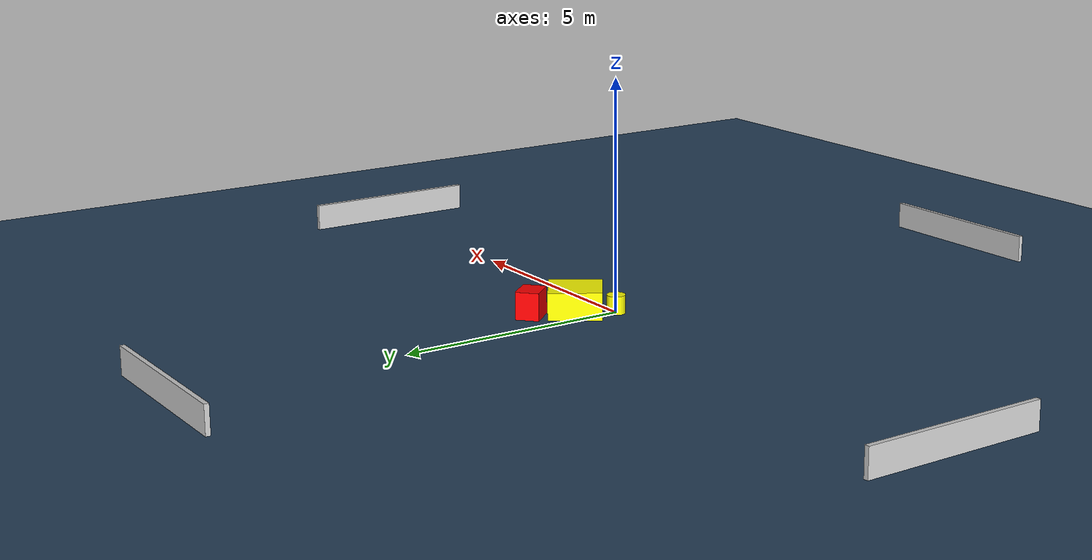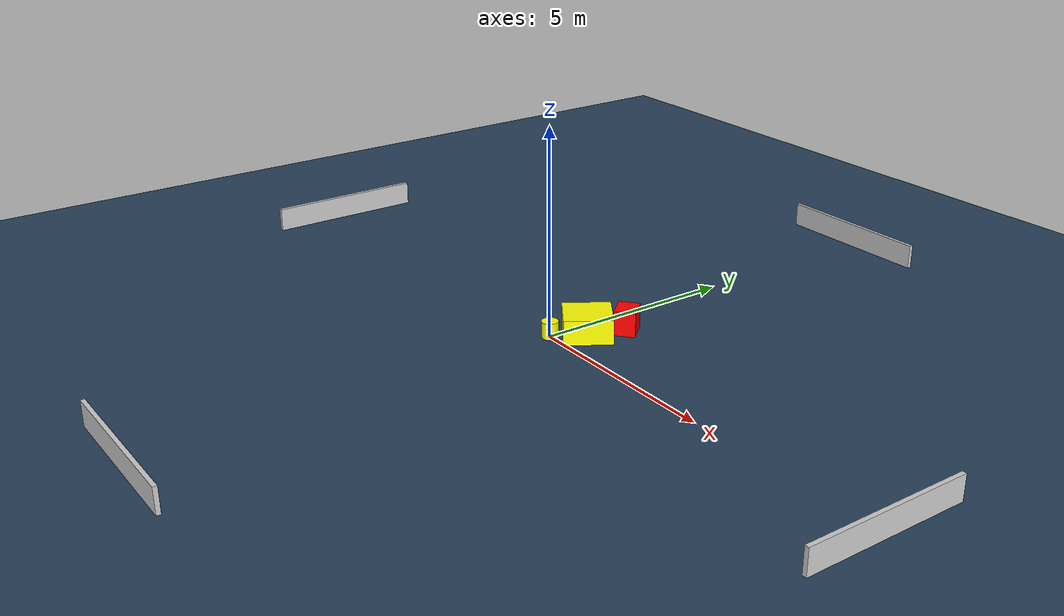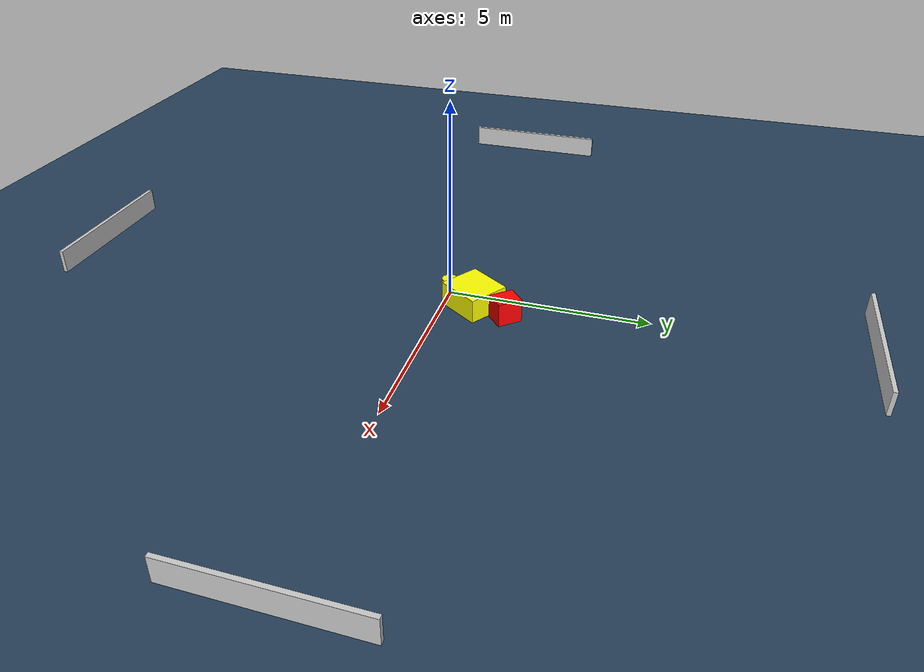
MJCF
<?xml version="1.0" ?>
<mujoco model="generated_environment">
  <option timestep="0.01" integrator="RK4" cone="elliptic"/>
  <default>
    <geom density="1"/>
  </default>
  <asset>
    <texture builtin="gradient" height="3072" name="skybox" rgb1="0.3 0.5 0.7" rgb2="0 0 0" type="skybox" width="512"/>
    <texture builtin="checker" height="300" name="groundplane" rgb1="0.2 0.3 0.4" rgb2="0.1 0.2 0.3" type="2d" width="300"/>
    <material name="groundplane" reflectance="0.2" texrepeat="5 5" texture="groundplane"/>
  </asset>
  <worldbody>
    <light dir="0 0 -1" directional="true" pos="0 0 1.5"/>
    <geom condim="3" friction="0.5 0.005 0.001" material="groundplane" name="floor" pos="0 0 0" size="0 0 0.05" type="plane"/>
    <body name="walls">
      <geom name="wall_1" condim="4" pos="-10.0 0.0 0.3" rgba="0.800000011920929 0.800000011920929 0.800000011920929 1.0" size="0.05 2.0 0.3" type="box"/>
      <geom name="wall_2" condim="4" pos="10.0 0.0 0.3" rgba="0.800000011920929 0.800000011920929 0.800000011920929 1.0" size="0.05 2.0 0.3" type="box"/>
      <geom name="wall_3" condim="4" pos="0.0 -10.0 0.3" rgba="0.800000011920929 0.800000011920929 0.800000011920929 1.0" size="2.0 0.05 0.3" type="box"/>
      <geom name="wall_4" condim="4" pos="0.0 10.0 0.3" rgba="0.800000011920929 0.800000011920929 0.800000011920929 1.0" size="2.0 0.05 0.3" type="box"/>
    </body>
    <body name="robot">
      <joint name="joint_x" type="slide" pos="0 0 0" axis="1 0 0"/>
      <joint name="joint_y" type="slide" pos="0 0 0" axis="0 1 0"/>
      <geom name="robot" type="cylinder" pos="0.0 0.0 0.2" size="0.2 0.2 0.0" mass="5.0" friction="1.0 0.005 0.0001" condim="4" rgba="1.0 1.0 0.0 1.0"/>
    </body>
    <body name="obstacle_1_movable">
      <geom name="obstacle_1_movable" condim="4" pos="0.43839657886146005 0.7415187189312685 0.3" euler="0 0 56.09022536323095" friction="0.0 0.005 0.001" rgba="1.0 1.0 0.0 1.0" size="0.574670758974166 0.53284359535625 0.3" type="box" mass="0.1"/>
      <joint type="free"/>
    </body>
    <body name="obstacle_2_static">
      <geom name="obstacle_2_static" condim="4" pos="0.7839245482067541 1.6217004361558391 0.3" euler="0 0 311.2264745621284" friction="0.0 0.005 0.001" rgba="1.0 0.0 0.0 1.0" size="0.30766510445352596 0.25427603900232654 0.3" type="box"/>
    </body>
  </worldbody>
  <actuator>
    <motor name="actuator_x" joint="joint_x" gear="1" ctrlrange="-1 1"/>
    <motor name="actuator_y" joint="joint_y" gear="1" ctrlrange="-1 1"/>
  </actuator>
</mujoco>
